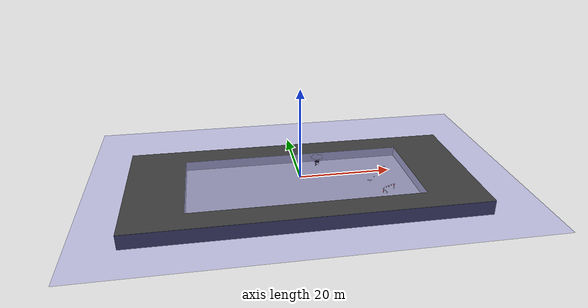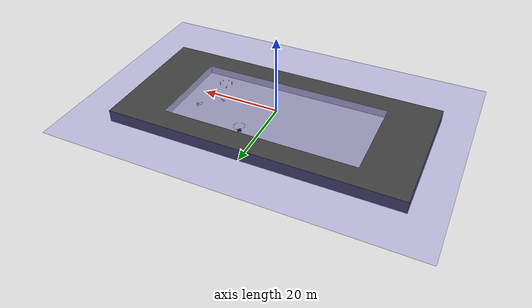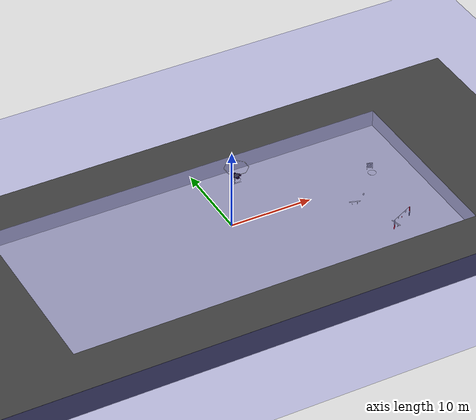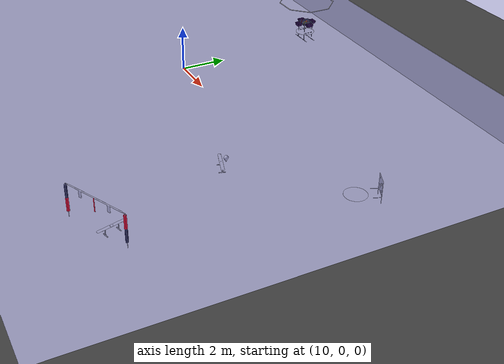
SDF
<sdf version="1.7">
 <world name="default">
  <physics name="default_physics" default="0" type="ode">
   <real_time_update_rate>100</real_time_update_rate>
   <max_step_size>0.01</max_step_size>
   <real_time_factor>1</real_time_factor>
  </physics>
  <spherical_coordinates>
   <surface_model>EARTH_WGS84</surface_model>
   <world_frame_orientation>ENU</world_frame_orientation>
   <latitude_deg>29.6474</latitude_deg>
   <longitude_deg>277.65</longitude_deg>
   <elevation>0.4</elevation>
   <heading_deg>180</heading_deg>
  </spherical_coordinates>
  <magnetic_field>5e-06 2.4e-05 3.9e-05</magnetic_field>
  <light name="illum" type="directional">
   <pose>-4 18 9 0 -0.75 0</pose>
   <diffuse>0.1 0.4 1 1</diffuse>
   <attenuation><constant>1</constant><range>10</range></attenuation>
   <specular>0.1 0.1 0.1 1</specular>
   <direction>0 0 -1</direction>
   <spot><inner_angle>0</inner_angle><outer_angle>0</outer_angle><falloff>0</falloff></spot>
  </light>
  <light name="sky_illum" type="directional">
   <pose>0 0 5 3.14 -0 0</pose>
   <diffuse>1 1 1 1</diffuse>
   <attenuation><constant>1</constant><range>10</range></attenuation>
   <specular>0.1 0.1 0.1 1</specular>
   <direction>0 0 -1</direction>
   <spot><inner_angle>0</inner_angle><outer_angle>0</outer_angle><falloff>0</falloff></spot>
  </light>
  <light name="sun" type="directional">
   <pose>0 0 10 0 -0 0</pose>
   <diffuse>0.8 0.8 0.8 1</diffuse>
   <specular>0.2 0.2 0.2 1</specular>
   <attenuation>
    <range>1000</range>
    <constant>0.9</constant>
    <linear>0.01</linear>
    <quadratic>0.001</quadratic>
   </attenuation>
   <direction>-0.5 0.1 -0.9</direction>
   <spot><inner_angle>0</inner_angle><outer_angle>0</outer_angle><falloff>0</falloff></spot>
  </light>
  <light name="user_point_light_0" type="point">
   <pose>0.109933 -0.142384 1 0 -0 0</pose>
   <diffuse>0.5 0.5 0.5 1</diffuse>
   <specular>0.1 0.1 0.1 1</specular>
   <attenuation>
    <range>100</range>
    <constant>0.5</constant>
    <linear>0.01</linear>
    <quadratic>0.001</quadratic>
   </attenuation>
   <cast_shadows>0</cast_shadows>
   <direction>0 0 -1</direction>
   <spot><inner_angle>0</inner_angle><outer_angle>0</outer_angle><falloff>0</falloff></spot>
  </light>
  <light name="user_point_light_1" type="point">
   <pose>-29.7505 -0.454729 1 0 -0 0</pose>
   <diffuse>0.5 0.5 0.5 1</diffuse>
   <specular>0.1 0.1 0.1 1</specular>
   <attenuation>
    <range>100</range>
    <constant>0.5</constant>
    <linear>0.01</linear>
    <quadratic>0.001</quadratic>
   </attenuation>
   <cast_shadows>0</cast_shadows>
   <direction>0 0 -1</direction>
   <spot><inner_angle>0</inner_angle><outer_angle>0</outer_angle><falloff>0</falloff></spot>
  </light>
  <light name="user_point_light_2" type="point">
   <pose>31.6112 -2.69613 1 0 -0 0</pose>
   <diffuse>0.5 0.5 0.5 1</diffuse>
   <specular>0.1 0.1 0.1 1</specular>
   <attenuation>
    <range>100</range>
    <constant>0.5</constant>
    <linear>0.01</linear>
    <quadratic>0.001</quadratic>
   </attenuation>
   <cast_shadows>0</cast_shadows>
   <direction>0 0 -1</direction>
   <spot><inner_angle>0</inner_angle><outer_angle>0</outer_angle><falloff>0</falloff></spot>
  </light>
  <model name="water">
   <static>1</static>
   <pose>0.194567 0.198111 0 3.14159 9.3e-05 3.14159</pose>
   <link name="link">
    <visual name="visual">
     <transparency>0.8</transparency>
     <cast_shadows>0</cast_shadows>
     <geometry><box><size>92 61 0.02</size></box></geometry>
     <material>
      <ambient>0.2 0.2 0.9 1</ambient>
      <diffuse>0.2 0.2 0.9 1</diffuse>
      <specular>0.1 0.1 0.3 1</specular>
      <emissive>0 0 0 1</emissive>
     </material>
    </visual>
   </link>
  </model>
  <model name="transdec_pinger">
   <static>1</static>
   <pose>20 3 -1.719 0 -0 0</pose>
   <link name="link">
    <visual name="visual">
     <geometry><cylinder><radius>0.5</radius><length>0.001</length></cylinder></geometry>
    </visual>
   </link>
  </model>
  <model name="transdec_pinger2">
   <static>1</static>
   <pose>5.5 9.25 -1.719 0 -0 0</pose>
   <link name="link">
    <visual name="visual">
     <geometry><cylinder><radius>0.5</radius><length>0.001</length></cylinder></geometry>
    </visual>
   </link>
  </model>
  <scene>
   <sky><clouds><speed>12</speed></clouds></sky>
   <ambient>0.4 0.4 0.4 1</ambient>
   <background>0.7 0.7 0.7 1</background>
   <shadows>0</shadows>
   <fog><color>0.25 0.6 0.59 1.0</color><type>exp</type><density>0.1</density><start>5</start><end>15</end></fog>
  </scene>
  <gravity>0 0 -9.8</gravity>
  <atmosphere type="adiabatic"/>
  <model name="startgate_2024">
   <static>1</static>
   <link name="base_link">
    <inertial>
     <mass>1</mass>
     <inertia>
      <ixx>0.166667</ixx>
      <ixy>0</ixy>
      <ixz>0</ixz>
      <iyy>0.166667</iyy>
      <iyz>0</iyz>
      <izz>0.166667</izz>
     </inertia>
    </inertial>
    <collision name="base_link_collision">
     <geometry><mesh><uri>file://startgate_2024/startgate.dae</uri></mesh></geometry>
    </collision>
    <visual name="base_link_visual">
     <geometry><mesh><uri>file://startgate_2024/startgate.dae</uri></mesh></geometry>
    </visual>
   </link>
   <pose>18 -7 -0.4 0 -0 -2.69318</pose>
  </model>
  <model name="buoy_2024">
   <static>1</static>
   <link name="base_link">
    <inertial>
     <mass>1</mass>
     <inertia>
      <ixx>0.166667</ixx>
      <ixy>0</ixy>
      <ixz>0</ixz>
      <iyy>0.166667</iyy>
      <iyz>0</iyz>
      <izz>0.166667</izz>
     </inertia>
    </inertial>
    <collision name="base_link_collision">
     <geometry><mesh><uri>file://buoy_2024/buoy.dae</uri></mesh></geometry>
    </collision>
    <visual name="base_link_visual">
     <geometry><mesh><uri>file://buoy_2024/buoy.dae</uri></mesh></geometry>
    </visual>
   </link>
   <pose>16.5 -1 -0.9 3.14159 0.001592 3.14159</pose>
  </model>
  <model name="mapping_torpedoes_2024">
   <static>1</static>
   <link name="base_link">
    <inertial>
     <mass>1</mass>
     <inertia>
      <ixx>0.166667</ixx>
      <ixy>0</ixy>
      <ixz>0</ixz>
      <iyy>0.166667</iyy>
      <iyz>0</iyz>
      <izz>0.166667</izz>
     </inertia>
    </inertial>
    <collision name="base_link_collision">
     <geometry><mesh><uri>file://mapping_torpedoes_2024/mapping_torpedoes.dae</uri></mesh></geometry>
    </collision>
    <visual name="base_link_visual">
     <geometry><mesh><uri>file://mapping_torpedoes_2024/mapping_torpedoes.dae</uri></mesh></geometry>
    </visual>
   </link>
   <pose>20.25 4 -1.41 0 -0 1.15</pose>
  </model>
  <model name="octogon_2024">
   <static>1</static>
   <link name="base_link">
    <inertial>
     <mass>1</mass>
     <inertia>
      <ixx>0.166667</ixx>
      <ixy>0</ixy>
      <ixz>0</ixz>
      <iyy>0.166667</iyy>
      <iyz>0</iyz>
      <izz>0.166667</izz>
     </inertia>
    </inertial>
    <collision name="base_link_collision">
     <geometry><mesh><uri>file://octogon_2024/octogon.dae</uri></mesh></geometry>
    </collision>
    <visual name="base_link_visual">
     <geometry><mesh><uri>file://octogon_2024/octogon.dae</uri></mesh></geometry>
    </visual>
   </link>
   <pose>5.5 9.25 0 0 -0 0</pose>
  </model>
  <model name="collection_table_2024">
   <static>1</static>
   <link name="base_link">
    <inertial>
     <mass>1</mass>
     <inertia>
      <ixx>0.166667</ixx>
      <ixy>0</ixy>
      <ixz>0</ixz>
      <iyy>0.166667</iyy>
      <iyz>0</iyz>
      <izz>0.166667</izz>
     </inertia>
    </inertial>
    <collision name="base_link_collision">
     <geometry><mesh><uri>file://collection_table_2024/collection_table.dae</uri></mesh></geometry>
    </collision>
    <visual name="base_link_visual">
     <geometry><mesh><uri>file://collection_table_2024/collection_table.dae</uri></mesh></geometry>
    </visual>
   </link>
   <pose>5.5 9.25 -1.14 0 -0 0</pose>
  </model>
  <model name="tubeworm_2024">
   <static>1</static>
   <link name="base_link">
    <inertial>
     <mass>1</mass>
     <inertia>
      <ixx>0.166667</ixx>
      <ixy>0</ixy>
      <ixz>0</ixz>
      <iyy>0.166667</iyy>
      <iyz>0</iyz>
      <izz>0.166667</izz>
     </inertia>
    </inertial>
    <collision name="base_link_collision">
     <geometry><mesh><uri>file://tubeworm_2024/tubeworm.dae</uri></mesh></geometry>
    </collision>
    <visual name="base_link_visual">
     <geometry><mesh><uri>file://tubeworm_2024/tubeworm.dae</uri></mesh></geometry>
    </visual>
   </link>
   <pose>5.35 9.1 -1.145 0 -0 0</pose>
  </model>
  <model name="nautilus_2024_2">
   <static>1</static>
   <link name="base_link">
    <inertial>
     <mass>1</mass>
     <inertia>
      <ixx>0.166667</ixx>
      <ixy>0</ixy>
      <ixz>0</ixz>
      <iyy>0.166667</iyy>
      <iyz>0</iyz>
      <izz>0.166667</izz>
     </inertia>
    </inertial>
    <collision name="base_link_collision">
     <geometry><mesh><uri>file://nautilus_2024/nautilus.dae</uri></mesh></geometry>
    </collision>
    <visual name="base_link_visual">
     <geometry><mesh><uri>file://nautilus_2024/nautilus.dae</uri></mesh></geometry>
    </visual>
   </link>
   <pose>5.6 9.15 -1.195 0 -0 0</pose>
  </model>
  <model name="coral_2024">
   <static>1</static>
   <link name="base_link">
    <inertial>
     <mass>1</mass>
     <inertia>
      <ixx>0.166667</ixx>
      <ixy>0</ixy>
      <ixz>0</ixz>
      <iyy>0.166667</iyy>
      <iyz>0</iyz>
      <izz>0.166667</izz>
     </inertia>
    </inertial>
    <collision name="base_link_collision">
     <geometry><mesh><uri>file://coral_2024/coral.dae</uri></mesh></geometry>
    </collision>
    <visual name="base_link_visual">
     <geometry><mesh><uri>file://coral_2024/coral.dae</uri></mesh></geometry>
    </visual>
   </link>
   <pose>5.4 9.35 -1.23 0 0 -1.5708</pose>
  </model>
  <model name="pathmarker_2024">
   <static>1</static>
   <link name="base_link">
    <inertial>
     <mass>1</mass>
     <inertia>
      <ixx>0.166667</ixx>
      <ixy>0</ixy>
      <ixz>0</ixz>
      <iyy>0.166667</iyy>
      <iyz>0</iyz>
      <izz>0.166667</izz>
     </inertia>
    </inertial>
    <collision name="base_link_collision">
     <geometry><mesh><uri>file://pathmarker_2024/pathmarker.dae</uri></mesh></geometry>
    </collision>
    <visual name="base_link_visual">
     <geometry><mesh><uri>file://pathmarker_2024/pathmarker.dae</uri></mesh></geometry>
    </visual>
   </link>
   <pose>17.65 -6.35 -1.85 0 -0 0.25</pose>
  </model>
  <model name="pathmarker_2024_0">
   <static>1</static>
   <link name="base_link">
    <inertial>
     <mass>1</mass>
     <inertia>
      <ixx>0.166667</ixx>
      <ixy>0</ixy>
      <ixz>0</ixz>
      <iyy>0.166667</iyy>
      <iyz>0</iyz>
      <izz>0.166667</izz>
     </inertia>
    </inertial>
    <collision name="base_link_collision">
     <geometry><mesh><uri>file://pathmarker_2024/pathmarker.dae</uri></mesh></geometry>
    </collision>
    <visual name="base_link_visual">
     <geometry><mesh><uri>file://pathmarker_2024/pathmarker.dae</uri></mesh></geometry>
    </visual>
   </link>
   <pose>15.5 -0.75 -1.85 0 -0 1.25</pose>
  </model>
  <model name="woollettpool_2024">
   <static>1</static>
   <link name="base_link">
    <inertial>
     <mass>1</mass>
     <inertia>
      <ixx>0.166667</ixx>
      <ixy>0</ixy>
      <ixz>0</ixz>
      <iyy>0.166667</iyy>
      <iyz>0</iyz>
      <izz>0.166667</izz>
     </inertia>
    </inertial>
    <collision name="base_link_collision">
     <geometry><mesh><uri>file://woollett_pool_2024/WoollettPool.dae</uri></mesh></geometry>
    </collision>
    <visual name="base_link_visual">
     <geometry><mesh><uri>file://woollett_pool_2024/WoollettPool.dae</uri></mesh></geometry>
    </visual>
   </link>
   <pose>0 0 -0.4 0 -0 1.5708</pose>
  </model>
 </world>
</sdf>
